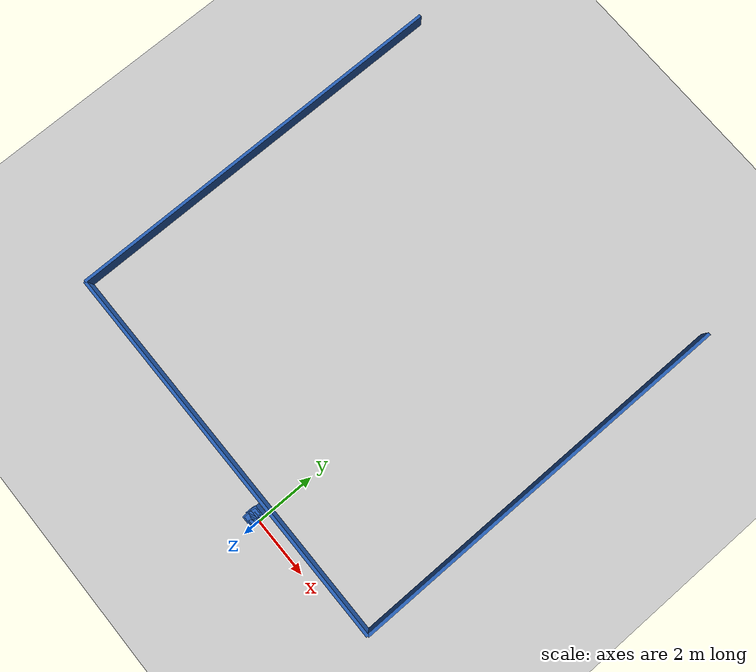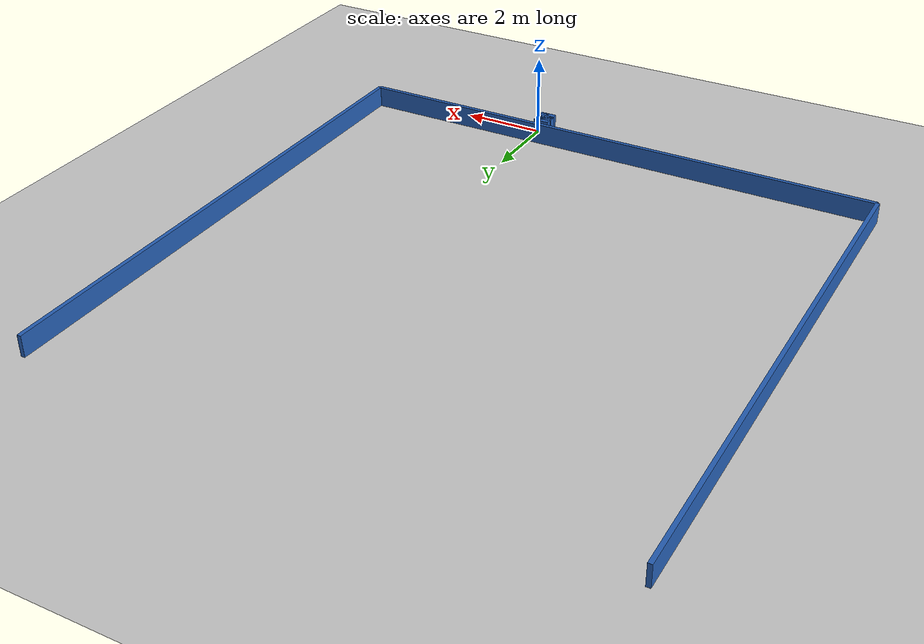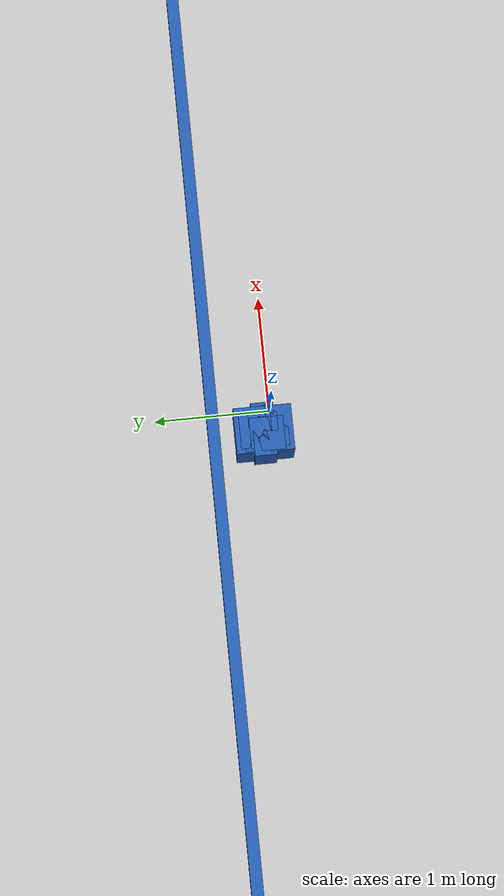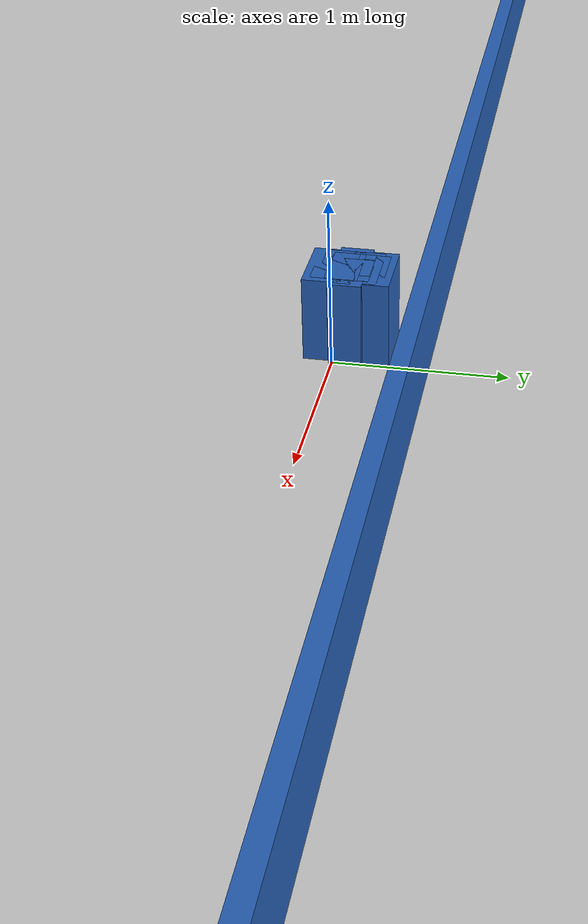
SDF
<?xml version="1.0" ?>
    <sdf version="1.5">
      <world name="default">
        <!-- A global light source -->
        <include>
          <uri>model://sun</uri>
        </include>
        <!-- A ground plane -->
        <include>
          <uri>model://ground_plane</uri>
        </include>

    <model name='libopen_space_final_T2B_92_34'>
      <static>1</static>
      <pose frame=''>-0.225000 0.075000 0.000000 0.000000 0.000000 0.000000</pose>
      <link name='link'>
        <inertial>
          <mass>1</mass>
          <inertia>
            <ixx>0.145833</ixx>
            <ixy>0</ixy>
            <ixz>0</ixz>
            <iyy>0.145833</iyy>
            <iyz>0</iyz>
            <izz>0.125</izz>
          </inertia>
        </inertial>
        <collision name='collision'>
          <geometry>
            <box>
              <size>0.32 0.12 1</size>
            </box>
          </geometry>
          <max_contacts>10</max_contacts>
          <surface>
            <contact>
              <ode/>
            </contact>
            <bounce/>
            <friction>
              <torsional>
                <ode/>
              </torsional>
              <ode/>
            </friction>
          </surface>
        </collision>
        <visual name='visual'>
          <geometry>
            <box>
              <size>0.32 0.12 1</size>
            </box>
          </geometry>
	    <material>
              <ambient>0.152000 0.379000 0.720000 1</ambient>
	      <diffuse>0.152000 0.379000 0.720000 1</diffuse>
          </material>
          <material>
            <script>
              <name>Gazebo/Grey</name>
              <uri>file://media/materials/scripts/gazebo.material</uri>
            </script>
          </material>
        </visual>
        <self_collide>0</self_collide>
        <kinematic>0</kinematic>
        <gravity>1</gravity>
      </link>
      <plugin name='libopen_space_final_T2B_92_34' filename='libopen_space_final_T2B_92_34.so'/>
    </model>

    <model name='libopen_space_final_T2B_96_0'>
      <static>1</static>
      <pose frame=''>-0.225000 0.075000 0.000000 0.000000 0.000000 0.000000</pose>
      <link name='link'>
        <inertial>
          <mass>1</mass>
          <inertia>
            <ixx>0.145833</ixx>
            <ixy>0</ixy>
            <ixz>0</ixz>
            <iyy>0.145833</iyy>
            <iyz>0</iyz>
            <izz>0.125</izz>
          </inertia>
        </inertial>
        <collision name='collision'>
          <geometry>
            <box>
              <size>0.40 0.13 1</size>
            </box>
          </geometry>
          <max_contacts>10</max_contacts>
          <surface>
            <contact>
              <ode/>
            </contact>
            <bounce/>
            <friction>
              <torsional>
                <ode/>
              </torsional>
              <ode/>
            </friction>
          </surface>
        </collision>
        <visual name='visual'>
          <geometry>
            <box>
              <size>0.40 0.13 1</size>
            </box>
          </geometry>
	    <material>
              <ambient>0.152000 0.379000 0.720000 1</ambient>
	      <diffuse>0.152000 0.379000 0.720000 1</diffuse>
          </material>
          <material>
            <script>
              <name>Gazebo/Grey</name>
              <uri>file://media/materials/scripts/gazebo.material</uri>
            </script>
          </material>
        </visual>
        <self_collide>0</self_collide>
        <kinematic>0</kinematic>
        <gravity>1</gravity>
      </link>
      <plugin name='libopen_space_final_T2B_96_0' filename='libopen_space_final_T2B_96_0.so'/>
    </model>

    <model name='libopen_space_final_T2B_103_35'>
      <static>1</static>
      <pose frame=''>-0.225000 0.075000 0.000000 0.000000 0.000000 0.000000</pose>
      <link name='link'>
        <inertial>
          <mass>1</mass>
          <inertia>
            <ixx>0.145833</ixx>
            <ixy>0</ixy>
            <ixz>0</ixz>
            <iyy>0.145833</iyy>
            <iyz>0</iyz>
            <izz>0.125</izz>
          </inertia>
        </inertial>
        <collision name='collision'>
          <geometry>
            <box>
              <size>0.20 0.24 1</size>
            </box>
          </geometry>
          <max_contacts>10</max_contacts>
          <surface>
            <contact>
              <ode/>
            </contact>
            <bounce/>
            <friction>
              <torsional>
                <ode/>
              </torsional>
              <ode/>
            </friction>
          </surface>
        </collision>
        <visual name='visual'>
          <geometry>
            <box>
              <size>0.20 0.24 1</size>
            </box>
          </geometry>
	    <material>
              <ambient>0.152000 0.379000 0.720000 1</ambient>
	      <diffuse>0.152000 0.379000 0.720000 1</diffuse>
          </material>
          <material>
            <script>
              <name>Gazebo/Grey</name>
              <uri>file://media/materials/scripts/gazebo.material</uri>
            </script>
          </material>
        </visual>
        <self_collide>0</self_collide>
        <kinematic>0</kinematic>
        <gravity>1</gravity>
      </link>
      <plugin name='libopen_space_final_T2B_103_35' filename='libopen_space_final_T2B_103_35.so'/>
    </model>

    <model name='libopen_space_final_T2B_129_11'>
      <static>1</static>
      <pose frame=''>-0.225000 0.075000 0.000000 0.000000 0.000000 0.000000</pose>
      <link name='link'>
        <inertial>
          <mass>1</mass>
          <inertia>
            <ixx>0.145833</ixx>
            <ixy>0</ixy>
            <ixz>0</ixz>
            <iyy>0.145833</iyy>
            <iyz>0</iyz>
            <izz>0.125</izz>
          </inertia>
        </inertial>
        <collision name='collision'>
          <geometry>
            <box>
              <size>0.20 0.13 1</size>
            </box>
          </geometry>
          <max_contacts>10</max_contacts>
          <surface>
            <contact>
              <ode/>
            </contact>
            <bounce/>
            <friction>
              <torsional>
                <ode/>
              </torsional>
              <ode/>
            </friction>
          </surface>
        </collision>
        <visual name='visual'>
          <geometry>
            <box>
              <size>0.20 0.13 1</size>
            </box>
          </geometry>
	    <material>
              <ambient>0.152000 0.379000 0.720000 1</ambient>
	      <diffuse>0.152000 0.379000 0.720000 1</diffuse>
          </material>
          <material>
            <script>
              <name>Gazebo/Grey</name>
              <uri>file://media/materials/scripts/gazebo.material</uri>
            </script>
          </material>
        </visual>
        <self_collide>0</self_collide>
        <kinematic>0</kinematic>
        <gravity>1</gravity>
      </link>
      <plugin name='libopen_space_final_T2B_129_11' filename='libopen_space_final_T2B_129_11.so'/>
    </model>

    <model name='libopen_space_final_T2B_140_77'>
      <static>1</static>
      <pose frame=''>-0.225000 0.075000 0.000000 0.000000 0.000000 0.000000</pose>
      <link name='link'>
        <inertial>
          <mass>1</mass>
          <inertia>
            <ixx>0.145833</ixx>
            <ixy>0</ixy>
            <ixz>0</ixz>
            <iyy>0.145833</iyy>
            <iyz>0</iyz>
            <izz>0.125</izz>
          </inertia>
        </inertial>
        <collision name='collision'>
          <geometry>
            <box>
              <size>0.39 0.49 1</size>
            </box>
          </geometry>
          <max_contacts>10</max_contacts>
          <surface>
            <contact>
              <ode/>
            </contact>
            <bounce/>
            <friction>
              <torsional>
                <ode/>
              </torsional>
              <ode/>
            </friction>
          </surface>
        </collision>
        <visual name='visual'>
          <geometry>
            <box>
              <size>0.39 0.49 1</size>
            </box>
          </geometry>
	    <material>
              <ambient>0.152000 0.379000 0.720000 1</ambient>
	      <diffuse>0.152000 0.379000 0.720000 1</diffuse>
          </material>
          <material>
            <script>
              <name>Gazebo/Grey</name>
              <uri>file://media/materials/scripts/gazebo.material</uri>
            </script>
          </material>
        </visual>
        <self_collide>0</self_collide>
        <kinematic>0</kinematic>
        <gravity>1</gravity>
      </link>
      <plugin name='libopen_space_final_T2B_140_77' filename='libopen_space_final_T2B_140_77.so'/>
    </model>

    <model name='libopen_space_final_T2B_91_29'>
      <static>1</static>
      <pose frame=''>-0.225000 0.075000 0.000000 0.000000 0.000000 0.000000</pose>
      <link name='link'>
        <inertial>
          <mass>1</mass>
          <inertia>
            <ixx>0.145833</ixx>
            <ixy>0</ixy>
            <ixz>0</ixz>
            <iyy>0.145833</iyy>
            <iyz>0</iyz>
            <izz>0.125</izz>
          </inertia>
        </inertial>
        <collision name='collision'>
          <geometry>
            <box>
              <size>0.19 0.24 1</size>
            </box>
          </geometry>
          <max_contacts>10</max_contacts>
          <surface>
            <contact>
              <ode/>
            </contact>
            <bounce/>
            <friction>
              <torsional>
                <ode/>
              </torsional>
              <ode/>
            </friction>
          </surface>
        </collision>
        <visual name='visual'>
          <geometry>
            <box>
              <size>0.19 0.24 1</size>
            </box>
          </geometry>
	    <material>
              <ambient>0.152000 0.379000 0.720000 1</ambient>
	      <diffuse>0.152000 0.379000 0.720000 1</diffuse>
          </material>
          <material>
            <script>
              <name>Gazebo/Grey</name>
              <uri>file://media/materials/scripts/gazebo.material</uri>
            </script>
          </material>
        </visual>
        <self_collide>0</self_collide>
        <kinematic>0</kinematic>
        <gravity>1</gravity>
      </link>
      <plugin name='libopen_space_final_T2B_91_29' filename='libopen_space_final_T2B_91_29.so'/>
    </model>

    <model name='libopen_space_final_T2B_122_30'>
      <static>1</static>
      <pose frame=''>-0.225000 0.075000 0.000000 0.000000 0.000000 0.000000</pose>
      <link name='link'>
        <inertial>
          <mass>1</mass>
          <inertia>
            <ixx>0.145833</ixx>
            <ixy>0</ixy>
            <ixz>0</ixz>
            <iyy>0.145833</iyy>
            <iyz>0</iyz>
            <izz>0.125</izz>
          </inertia>
        </inertial>
        <collision name='collision'>
          <geometry>
            <box>
              <size>0.37 0.34 1</size>
            </box>
          </geometry>
          <max_contacts>10</max_contacts>
          <surface>
            <contact>
              <ode/>
            </contact>
            <bounce/>
            <friction>
              <torsional>
                <ode/>
              </torsional>
              <ode/>
            </friction>
          </surface>
        </collision>
        <visual name='visual'>
          <geometry>
            <box>
              <size>0.37 0.34 1</size>
            </box>
          </geometry>
	    <material>
              <ambient>0.152000 0.379000 0.720000 1</ambient>
	      <diffuse>0.152000 0.379000 0.720000 1</diffuse>
          </material>
          <material>
            <script>
              <name>Gazebo/Grey</name>
              <uri>file://media/materials/scripts/gazebo.material</uri>
            </script>
          </material>
        </visual>
        <self_collide>0</self_collide>
        <kinematic>0</kinematic>
        <gravity>1</gravity>
      </link>
      <plugin name='libopen_space_final_T2B_122_30' filename='libopen_space_final_T2B_122_30.so'/>
    </model>

    <model name='libopen_space_final_T2B_91_57'>
      <static>1</static>
      <pose frame=''>-0.225000 0.075000 0.000000 0.000000 0.000000 0.000000</pose>
      <link name='link'>
        <inertial>
          <mass>1</mass>
          <inertia>
            <ixx>0.145833</ixx>
            <ixy>0</ixy>
            <ixz>0</ixz>
            <iyy>0.145833</iyy>
            <iyz>0</iyz>
            <izz>0.125</izz>
          </inertia>
        </inertial>
        <collision name='collision'>
          <geometry>
            <box>
              <size>0.36 0.11 1</size>
            </box>
          </geometry>
          <max_contacts>10</max_contacts>
          <surface>
            <contact>
              <ode/>
            </contact>
            <bounce/>
            <friction>
              <torsional>
                <ode/>
              </torsional>
              <ode/>
            </friction>
          </surface>
        </collision>
        <visual name='visual'>
          <geometry>
            <box>
              <size>0.36 0.11 1</size>
            </box>
          </geometry>
	    <material>
              <ambient>0.152000 0.379000 0.720000 1</ambient>
	      <diffuse>0.152000 0.379000 0.720000 1</diffuse>
          </material>
          <material>
            <script>
              <name>Gazebo/Grey</name>
              <uri>file://media/materials/scripts/gazebo.material</uri>
            </script>
          </material>
        </visual>
        <self_collide>0</self_collide>
        <kinematic>0</kinematic>
        <gravity>1</gravity>
      </link>
      <plugin name='libopen_space_final_T2B_91_57' filename='libopen_space_final_T2B_91_57.so'/>
    </model>

    <model name='libopen_space_final_T2B_140_51'>
      <static>1</static>
      <pose frame=''>-0.225000 0.075000 0.000000 0.000000 0.000000 0.000000</pose>
      <link name='link'>
        <inertial>
          <mass>1</mass>
          <inertia>
            <ixx>0.145833</ixx>
            <ixy>0</ixy>
            <ixz>0</ixz>
            <iyy>0.145833</iyy>
            <iyz>0</iyz>
            <izz>0.125</izz>
          </inertia>
        </inertial>
        <collision name='collision'>
          <geometry>
            <box>
              <size>0.31 0.25 1</size>
            </box>
          </geometry>
          <max_contacts>10</max_contacts>
          <surface>
            <contact>
              <ode/>
            </contact>
            <bounce/>
            <friction>
              <torsional>
                <ode/>
              </torsional>
              <ode/>
            </friction>
          </surface>
        </collision>
        <visual name='visual'>
          <geometry>
            <box>
              <size>0.31 0.25 1</size>
            </box>
          </geometry>
	    <material>
              <ambient>0.152000 0.379000 0.720000 1</ambient>
	      <diffuse>0.152000 0.379000 0.720000 1</diffuse>
          </material>
          <material>
            <script>
              <name>Gazebo/Grey</name>
              <uri>file://media/materials/scripts/gazebo.material</uri>
            </script>
          </material>
        </visual>
        <self_collide>0</self_collide>
        <kinematic>0</kinematic>
        <gravity>1</gravity>
      </link>
      <plugin name='libopen_space_final_T2B_140_51' filename='libopen_space_final_T2B_140_51.so'/>
    </model>

    <model name='libopen_space_final_T2B_77_65'>
      <static>1</static>
      <pose frame=''>-0.225000 0.075000 0.000000 0.000000 0.000000 0.000000</pose>
      <link name='link'>
        <inertial>
          <mass>1</mass>
          <inertia>
            <ixx>0.145833</ixx>
            <ixy>0</ixy>
            <ixz>0</ixz>
            <iyy>0.145833</iyy>
            <iyz>0</iyz>
            <izz>0.125</izz>
          </inertia>
        </inertial>
        <collision name='collision'>
          <geometry>
            <box>
              <size>0.32 0.24 1</size>
            </box>
          </geometry>
          <max_contacts>10</max_contacts>
          <surface>
            <contact>
              <ode/>
            </contact>
            <bounce/>
            <friction>
              <torsional>
                <ode/>
              </torsional>
              <ode/>
            </friction>
          </surface>
        </collision>
        <visual name='visual'>
          <geometry>
            <box>
              <size>0.32 0.24 1</size>
            </box>
          </geometry>
	    <material>
              <ambient>0.152000 0.379000 0.720000 1</ambient>
	      <diffuse>0.152000 0.379000 0.720000 1</diffuse>
          </material>
          <material>
            <script>
              <name>Gazebo/Grey</name>
              <uri>file://media/materials/scripts/gazebo.material</uri>
            </script>
          </material>
        </visual>
        <self_collide>0</self_collide>
        <kinematic>0</kinematic>
        <gravity>1</gravity>
      </link>
      <plugin name='libopen_space_final_T2B_77_65' filename='libopen_space_final_T2B_77_65.so'/>
    </model>

    <model name='libopen_space_final_T2B_125_67'>
      <static>1</static>
      <pose frame=''>-0.225000 0.075000 0.000000 0.000000 0.000000 0.000000</pose>
      <link name='link'>
        <inertial>
          <mass>1</mass>
          <inertia>
            <ixx>0.145833</ixx>
            <ixy>0</ixy>
            <ixz>0</ixz>
            <iyy>0.145833</iyy>
            <iyz>0</iyz>
            <izz>0.125</izz>
          </inertia>
        </inertial>
        <collision name='collision'>
          <geometry>
            <box>
              <size>0.45 0.19 1</size>
            </box>
          </geometry>
          <max_contacts>10</max_contacts>
          <surface>
            <contact>
              <ode/>
            </contact>
            <bounce/>
            <friction>
              <torsional>
                <ode/>
              </torsional>
              <ode/>
            </friction>
          </surface>
        </collision>
        <visual name='visual'>
          <geometry>
            <box>
              <size>0.45 0.19 1</size>
            </box>
          </geometry>
	    <material>
              <ambient>0.152000 0.379000 0.720000 1</ambient>
	      <diffuse>0.152000 0.379000 0.720000 1</diffuse>
          </material>
          <material>
            <script>
              <name>Gazebo/Grey</name>
              <uri>file://media/materials/scripts/gazebo.material</uri>
            </script>
          </material>
        </visual>
        <self_collide>0</self_collide>
        <kinematic>0</kinematic>
        <gravity>1</gravity>
      </link>
      <plugin name='libopen_space_final_T2B_125_67' filename='libopen_space_final_T2B_125_67.so'/>
    </model>

    <model name='libopen_space_final_T2B_79_93'>
      <static>1</static>
      <pose frame=''>-0.225000 0.075000 0.000000 0.000000 0.000000 0.000000</pose>
      <link name='link'>
        <inertial>
          <mass>1</mass>
          <inertia>
            <ixx>0.145833</ixx>
            <ixy>0</ixy>
            <ixz>0</ixz>
            <iyy>0.145833</iyy>
            <iyz>0</iyz>
            <izz>0.125</izz>
          </inertia>
        </inertial>
        <collision name='collision'>
          <geometry>
            <box>
              <size>0.31 0.41 1</size>
            </box>
          </geometry>
          <max_contacts>10</max_contacts>
          <surface>
            <contact>
              <ode/>
            </contact>
            <bounce/>
            <friction>
              <torsional>
                <ode/>
              </torsional>
              <ode/>
            </friction>
          </surface>
        </collision>
        <visual name='visual'>
          <geometry>
            <box>
              <size>0.31 0.41 1</size>
            </box>
          </geometry>
	    <material>
              <ambient>0.152000 0.379000 0.720000 1</ambient>
	      <diffuse>0.152000 0.379000 0.720000 1</diffuse>
          </material>
          <material>
            <script>
              <name>Gazebo/Grey</name>
              <uri>file://media/materials/scripts/gazebo.material</uri>
            </script>
          </material>
        </visual>
        <self_collide>0</self_collide>
        <kinematic>0</kinematic>
        <gravity>1</gravity>
      </link>
      <plugin name='libopen_space_final_T2B_79_93' filename='libopen_space_final_T2B_79_93.so'/>
    </model>

        <model name='bottom_wall'>
          <static>1</static>
          <pose frame=''>-2.25 0.5 0.000000 0.000000 0.000000 1.57079632</pose>
          <link name='link'>
            <inertial>
            <mass>1</mass>
            <inertia>
              <ixx>0.145833</ixx>
              <ixy>0</ixy>
              <ixz>0</ixz>
              <iyy>0.145833</iyy>
              <iyz>0</iyz>
              <izz>0.125</izz>
            </inertia>
            </inertial>
            <collision name='collision'>
            <geometry>
              <box>
              <size>0.1 13.5 1</size>
              </box>
            </geometry>
            <max_contacts>10</max_contacts>
            <surface>
              <contact>
              <ode/>
              </contact>
              <bounce/>
              <friction>
              <torsional>
                <ode/>
              </torsional>
              <ode/>
              </friction>
            </surface>
            </collision>
            <visual name='visual'>
            <geometry>
              <box>
              <size>0.1 13.5 1</size>
              </box>
            </geometry>
            <material>
              <ambient>0.152000 0.379000 0.720000 1</ambient>
            <diffuse>0.152000 0.379000 0.720000 1</diffuse>
            </material>
            <material>
              <script>
              <name>Gazebo/Grey</name>
              <uri>file://media/materials/scripts/gazebo.material</uri>
              </script>
            </material>
            </visual>
            <self_collide>0</self_collide>
            <kinematic>0</kinematic>
            <gravity>1</gravity>
          </link>
        </model>

        <model name='left_wall'>
          <static>1</static>
          <pose frame=''>-9 7.25 0.000000 0.000000 0.000000 0.000000</pose>
          <link name='link'>
            <inertial>
            <mass>1</mass>
            <inertia>
              <ixx>0.145833</ixx>
              <ixy>0</ixy>
              <ixz>0</ixz>
              <iyy>0.145833</iyy>
              <iyz>0</iyz>
              <izz>0.125</izz>
            </inertia>
            </inertial>
            <collision name='collision'>
            <geometry>
              <box>
              <size>0.1 13.5 1</size>
              </box>
            </geometry>
            <max_contacts>10</max_contacts>
            <surface>
              <contact>
              <ode/>
              </contact>
              <bounce/>
              <friction>
              <torsional>
                <ode/>
              </torsional>
              <ode/>
              </friction>
            </surface>
            </collision>
            <visual name='visual'>
            <geometry>
              <box>
              <size>0.1 13.5 1</size>
              </box>
            </geometry>
            <material>
              <ambient>0.152000 0.379000 0.720000 1</ambient>
            <diffuse>0.152000 0.379000 0.720000 1</diffuse>
            </material>
            <material>
              <script>
              <name>Gazebo/Grey</name>
              <uri>file://media/materials/scripts/gazebo.material</uri>
              </script>
            </material>
            </visual>
            <self_collide>0</self_collide>
            <kinematic>0</kinematic>
            <gravity>1</gravity>
          </link>
        </model>

        <model name='right_wall'>
          <static>1</static>
          <pose frame=''>4.5 7.25 0.000000 0.000000 0.000000 0.000000</pose>
          <link name='link'>
            <inertial>
            <mass>1</mass>
            <inertia>
              <ixx>0.145833</ixx>
              <ixy>0</ixy>
              <ixz>0</ixz>
              <iyy>0.145833</iyy>
              <iyz>0</iyz>
              <izz>0.125</izz>
            </inertia>
            </inertial>
            <collision name='collision'>
            <geometry>
              <box>
              <size>0.1 13.5 1</size>
              </box>
            </geometry>
            <max_contacts>10</max_contacts>
            <surface>
              <contact>
              <ode/>
              </contact>
              <bounce/>
              <friction>
              <torsional>
                <ode/>
              </torsional>
              <ode/>
              </friction>
            </surface>
            </collision>
            <visual name='visual'>
            <geometry>
              <box>
              <size>0.1 13.5 1</size>
              </box>
            </geometry>
            <material>
              <ambient>0.152000 0.379000 0.720000 1</ambient>
            <diffuse>0.152000 0.379000 0.720000 1</diffuse>
            </material>
            <material>
              <script>
              <name>Gazebo/Grey</name>
              <uri>file://media/materials/scripts/gazebo.material</uri>
              </script>
            </material>
            </visual>
            <self_collide>0</self_collide>
            <kinematic>0</kinematic>
            <gravity>1</gravity>
          </link>
        </model>

      </world>
    </sdf>"
